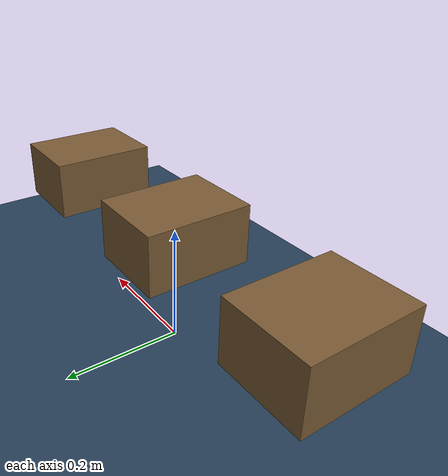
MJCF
<mujoco>
  <compiler autolimits="true"/>

  <option integrator="implicitfast">
    <flag contact="disable" gravity="disable"/>
  </option>

  <statistic meansize=".05" extent=".9" center="0 0 .15"/>

  <visual>
    <headlight diffuse=".1 .1 .1" ambient=".15 .15 .15"/>
  </visual>

  <asset>
    <texture name="checker" type="cube" builtin="checker" rgb1=".75 .55 .28" rgb2=".22 .18 .14" width="32" height="32"/>
    <material name="checker" texture="checker"/>
    <texture name="grid" type="2d" builtin="checker" width="512" height="512" rgb1=".1 .2 .3" rgb2=".2 .3 .4"/>
    <material name="grid" texture="grid" texrepeat="1 1" texuniform="true" reflectance=".2"/>
  </asset>

  <default>
    <geom type="box" size=".07 .09 .05" material="checker"/>
    <position kp="5" dampratio="1"/>
    <default class="angle">
      <position ctrlrange="-6.2832 6.2832" ctrllimited="false"/>
    </default>
    <default class="quat">
      <position ctrlrange="-1 1" ctrllimited="true"/>
    </default>
    <site size="1e-5"/>
  </default>

  <worldbody>
    <light pos="0 0 10" type="point" diffuse=".75 .72 .65" intensity="1200000" range="20" attenuation="1 0 .04"/>
    <light pos="-.3 -.4 1.3" dir="0 .34 -.94" diffuse=".75 .72 .65" intensity="100000" range="4" cutoff="13" attenuation="1 0 0" exponent="60"/>
    <light pos="0 -.4 1.3" dir="0 .34 -.94" diffuse=".75 .72 .65" intensity="100000" range="4" cutoff="16" exponent="60" attenuation="1 0 .5"/>
    <light pos=".3 -.4 1.3" dir="0 .34 -.94" diffuse=".75 .72 .65" intensity="100000" range="4" cutoff="16" exponent="60" attenuation="1 0 .5"/>

    <light type="point" pos="0 -1.5 2" diffuse=".3 .35 .45" intensity="15000" range="8" castshadow="false" attenuation="1 0 .3"/>

    <geom name="floor" type="plane" size="2 2 .025" material="grid"/>

    <site name="per-axis" pos="-.3 0 .4"/>
    <body name="peraxis" pos="-.3 0 .2">
      <joint name="peraxis" type="ball"/>
      <geom/>
    </body>

    <site name="expmap" pos="0 0 .4"/>
    <body name="expmap" pos="0 0 .2">
      <joint name="expmap" type="ball"/>
      <geom/>
    </body>

    <site name="quat" pos=".3 0 .4"/>
    <body name="quat" pos=".3 0 .2">
      <joint name="quat" type="ball"/>
      <geom/>
    </body>
  </worldbody>

  <actuator>
    <position name="rx_peraxis" joint="peraxis" gear="1 0 0" class="angle"/>
    <position name="ry_peraxis" joint="peraxis" gear="0 1 0" class="angle"/>
    <position name="rz_peraxis" joint="peraxis" gear="0 0 1" class="angle"/>
    <orientation name="expmap" joint="expmap" kp="1" dampratio="1" class="angle"/>
    <orientation name="quat" joint="quat" input="quat" kp="1" dampratio="1" class="quat"/>
  </actuator>
</mujoco>
